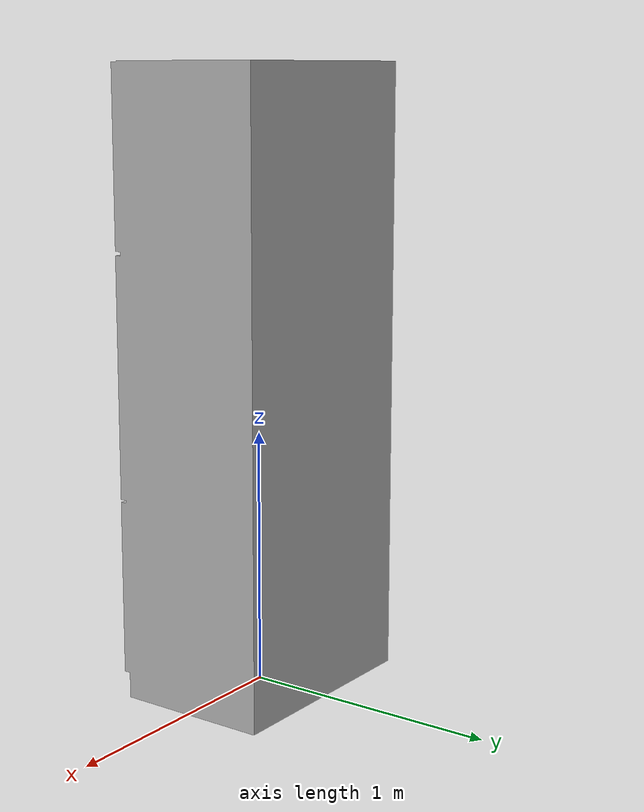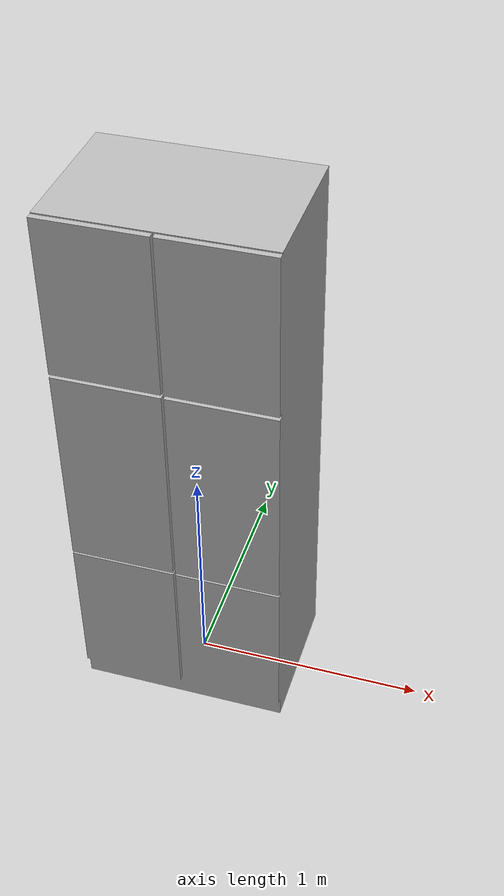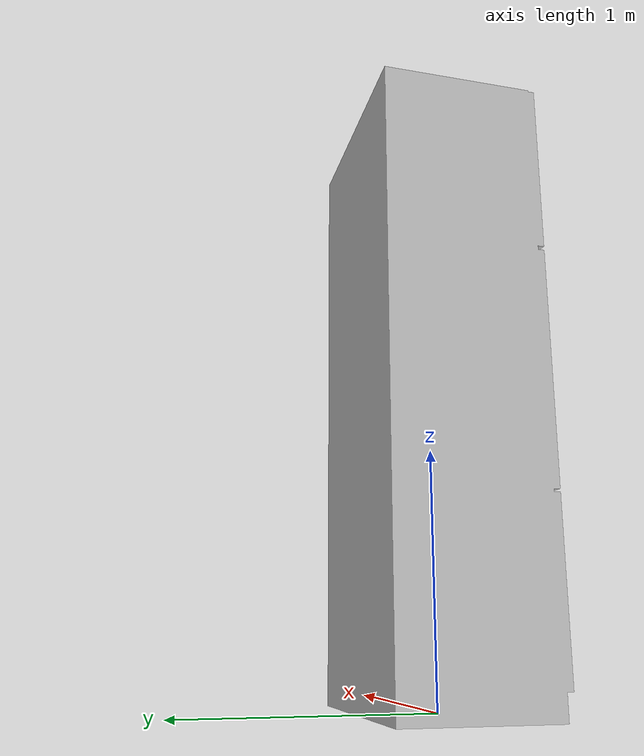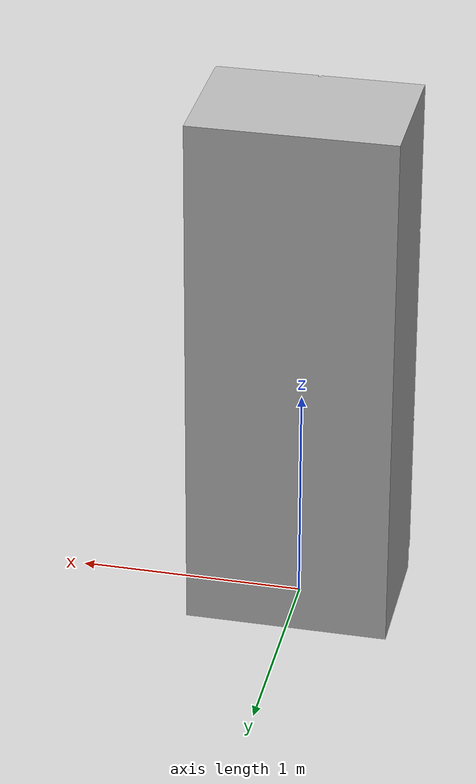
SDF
<?xml version="1.0"?>

<sdf version="1.6">
  <model name='storage_90'>
    <static>true</static>
    <link name="body">

        <visual name="visual">
          <geometry>
            <mesh><uri>model://models/storage_90/meshes/storage_90.dae</uri></mesh>
          </geometry>
        </visual>

        <collision name="collision">
          <geometry>
            <mesh><uri>model://models/storage_90/meshes/storage_90.dae</uri></mesh>
          </geometry>
        </collision>

<sensor name='sensor_contact' type='contact'>
    <contact>
        <collision>collision</collision>
    </contact>
</sensor>

    </link>

    <plugin filename="gz-sim-touchplugin-system"
        name="gz::sim::systems::TouchPlugin">
    <target>vehicle_blue</target>
    <namespace>storage_90</namespace>
    <time>0.001</time>
    <enabled>true</enabled>
</plugin>

  </model>
</sdf>
